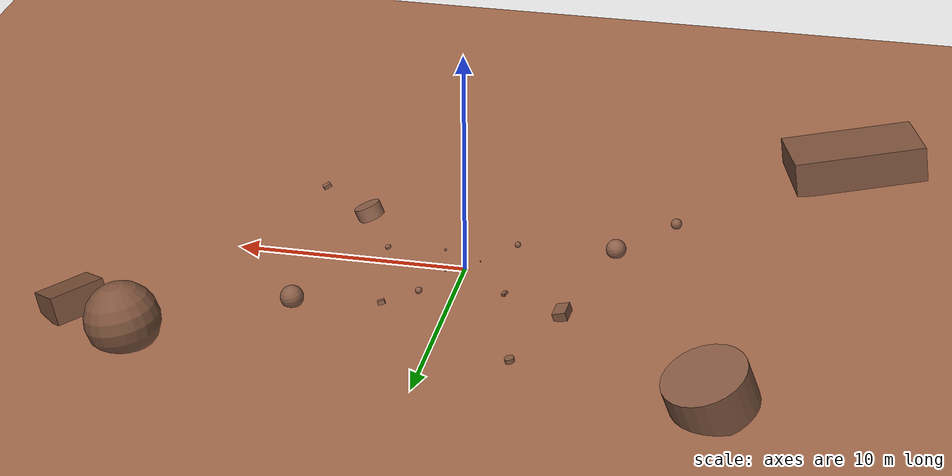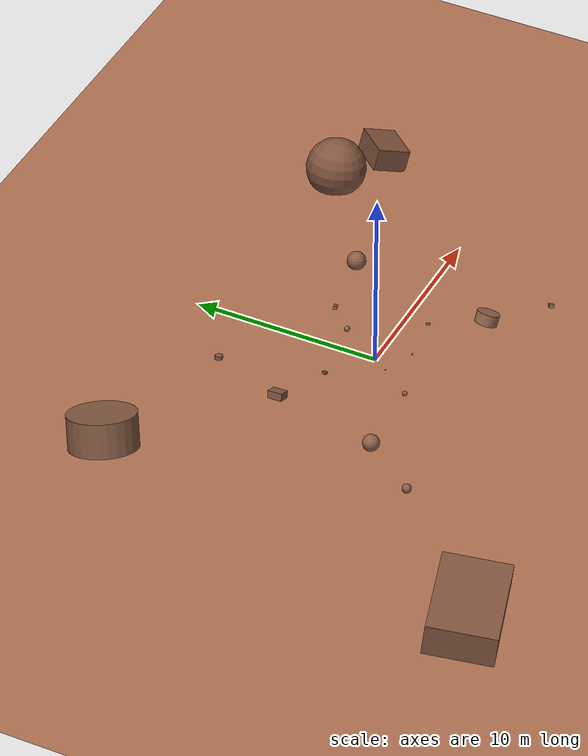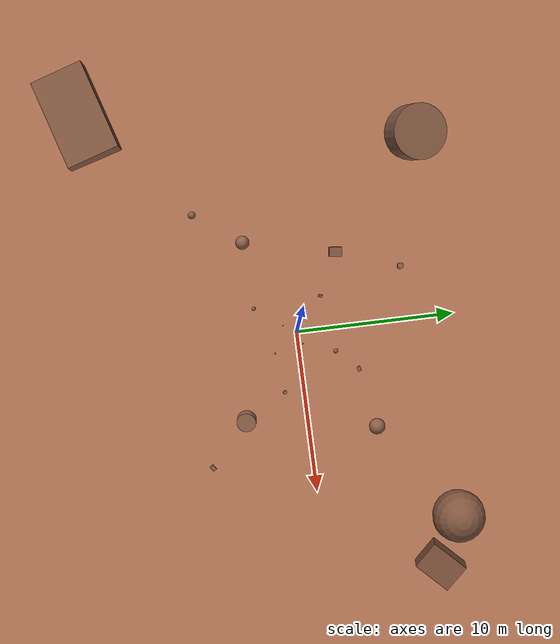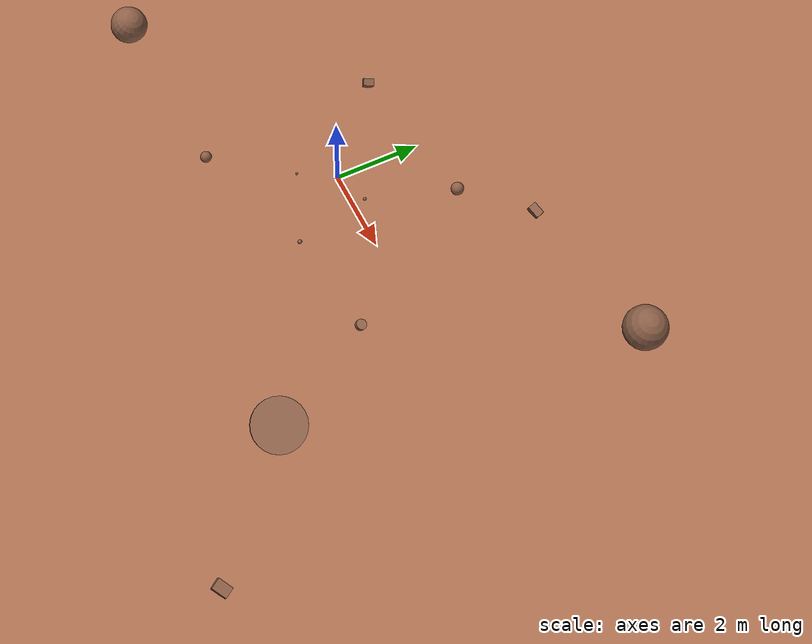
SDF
<?xml version="1.0" ?>
<sdf version="1.8">
  <world name="photorealistic_mars">

    <physics name="mars_physics" type="ignored">
      <max_step_size>0.001</max_step_size>
      <real_time_factor>1.0</real_time_factor>
    </physics>

    <plugin filename="libignition-gazebo-physics-system.so" name="ignition::gazebo::systems::Physics">
    </plugin>
    <plugin filename="libignition-gazebo-user-commands-system.so" name="ignition::gazebo::systems::UserCommands">
    </plugin>
    <plugin filename="libignition-gazebo-scene-broadcaster-system.so" name="ignition::gazebo::systems::SceneBroadcaster">
    </plugin>
    <plugin filename="libignition-gazebo-sensors-system.so" name="ignition::gazebo::systems::Sensors">
      <render_engine>ogre2</render_engine>
    </plugin>

    <!-- Mars gravity -->
    <gravity>0 0 -3.71</gravity>

    <!-- Mars atmosphere - realistic reddish sky -->
    <scene>
      <ambient>0.45 0.35 0.25 1.0</ambient>
      <background>0.85 0.55 0.35 1.0</background>
      <shadows>true</shadows>
      <fog>
        <color>0.9 0.6 0.4 1.0</color>
        <type>linear</type>
        <start>20</start>
        <end>300</end>
        <density>0.05</density>
      </fog>
    </scene>

    <!-- Mars sun - warmer, more diffused lighting -->
    <light type="directional" name="mars_sun">
      <cast_shadows>true</cast_shadows>
      <pose>100 50 80 0 0 0</pose>
      <diffuse>0.9 0.7 0.5 1</diffuse>
      <specular>0.4 0.3 0.2 1</specular>
      <attenuation>
        <range>2000</range>
        <constant>0.8</constant>
        <linear>0.005</linear>
        <quadratic>0.0001</quadratic>
      </attenuation>
      <direction>-0.4 -0.2 -0.8</direction>
    </light>

    <!-- Ambient fill light for Mars atmosphere -->
    <light type="directional" name="ambient_fill">
      <cast_shadows>false</cast_shadows>
      <pose>-50 -30 40 0 0 0</pose>
      <diffuse>0.3 0.2 0.15 1</diffuse>
      <specular>0.1 0.05 0.05 1</specular>
      <direction>0.3 0.2 -0.7</direction>
    </light>

    <!-- Mars terrain base with realistic coloring -->
    <model name="mars_terrain_base">
      <static>true</static>
      <link name="terrain_link">
        <collision name="terrain_collision">
          <geometry>
            <plane>
              <normal>0 0 1</normal>
              <size>500 500</size>
            </plane>
          </geometry>
          <surface>
            <friction>
              <ode>
                <mu>0.8</mu>
                <mu2>0.8</mu2>
              </ode>
            </friction>
          </surface>
        </collision>
        <visual name="terrain_visual">
          <geometry>
            <plane>
              <normal>0 0 1</normal>
              <size>500 500</size>
            </plane>
          </geometry>
          <material>
            <ambient>0.55 0.35 0.25 1</ambient>
            <diffuse>0.65 0.42 0.3 1</diffuse>
            <specular>0.05 0.05 0.05 1</specular>
          </material>
        </visual>
      </link>
    </model>

    <!-- Scattered rock field - small rocks everywhere -->
    <model name="scattered_small_rocks">
      <static>true</static>

      <!-- Row 1 of small rocks -->
      <link name="small_rock_1">
        <pose>1.5 2.3 0.08 0.2 0.1 0.5</pose>
        <collision name="small_rock_1_collision">
          <geometry>
            <sphere>
              <radius>0.15</radius>
            </sphere>
          </geometry>
        </collision>
        <visual name="small_rock_1_visual">
          <geometry>
            <sphere>
              <radius>0.15</radius>
            </sphere>
          </geometry>
          <material>
            <ambient>0.45 0.3 0.22 1</ambient>
            <diffuse>0.55 0.37 0.28 1</diffuse>
            <specular>0.1 0.1 0.1 1</specular>
          </material>
        </visual>
      </link>

      <link name="small_rock_2">
        <pose>-2.1 1.8 0.06 0.3 0.2 1.2</pose>
        <collision name="small_rock_2_collision">
          <geometry>
            <box>
              <size>0.25 0.18 0.12</size>
            </box>
          </geometry>
        </collision>
        <visual name="small_rock_2_visual">
          <geometry>
            <box>
              <size>0.25 0.18 0.12</size>
            </box>
          </geometry>
          <material>
            <ambient>0.42 0.28 0.2 1</ambient>
            <diffuse>0.52 0.35 0.26 1</diffuse>
            <specular>0.08 0.08 0.08 1</specular>
          </material>
        </visual>
      </link>

      <link name="small_rock_3">
        <pose>3.7 -1.2 0.05 0.1 0.4 0.8</pose>
        <collision name="small_rock_3_collision">
          <geometry>
            <cylinder>
              <radius>0.12</radius>
              <length>0.1</length>
            </cylinder>
          </geometry>
        </collision>
        <visual name="small_rock_3_visual">
          <geometry>
            <cylinder>
              <radius>0.12</radius>
              <length>0.1</length>
            </cylinder>
          </geometry>
          <material>
            <ambient>0.48 0.32 0.24 1</ambient>
            <diffuse>0.58 0.4 0.3 1</diffuse>
            <specular>0.1 0.1 0.1 1</specular>
          </material>
        </visual>
      </link>

      <link name="small_rock_4">
        <pose>-1.8 -2.5 0.07 0.5 0.1 1.8</pose>
        <collision name="small_rock_4_collision">
          <geometry>
            <sphere>
              <radius>0.13</radius>
            </sphere>
          </geometry>
        </collision>
        <visual name="small_rock_4_visual">
          <geometry>
            <sphere>
              <radius>0.13</radius>
            </sphere>
          </geometry>
          <material>
            <ambient>0.44 0.29 0.21 1</ambient>
            <diffuse>0.54 0.36 0.27 1</diffuse>
            <specular>0.09 0.09 0.09 1</specular>
          </material>
        </visual>
      </link>

      <link name="small_rock_5">
        <pose>2.8 3.6 0.09 0.2 0.3 0.3</pose>
        <collision name="small_rock_5_collision">
          <geometry>
            <box>
              <size>0.3 0.2 0.18</size>
            </box>
          </geometry>
        </collision>
        <visual name="small_rock_5_visual">
          <geometry>
            <box>
              <size>0.3 0.2 0.18</size>
            </box>
          </geometry>
          <material>
            <ambient>0.46 0.31 0.23 1</ambient>
            <diffuse>0.56 0.38 0.29 1</diffuse>
            <specular>0.1 0.1 0.1 1</specular>
          </material>
        </visual>
      </link>
    </model>

    <!-- Medium rocks scattered around -->
    <model name="medium_rocks_field">
      <static>true</static>

      <link name="medium_rock_1">
        <pose>6.5 4.2 0.25 0.1 0.2 0.7</pose>
        <collision name="medium_rock_1_collision">
          <geometry>
            <sphere>
              <radius>0.5</radius>
            </sphere>
          </geometry>
        </collision>
        <visual name="medium_rock_1_visual">
          <geometry>
            <sphere>
              <radius>0.5</radius>
            </sphere>
          </geometry>
          <material>
            <ambient>0.43 0.29 0.21 1</ambient>
            <diffuse>0.53 0.36 0.27 1</diffuse>
            <specular>0.12 0.12 0.12 1</specular>
          </material>
        </visual>
      </link>

      <link name="medium_rock_2">
        <pose>-4.8 3.1 0.2 0.3 0.1 1.5</pose>
        <collision name="medium_rock_2_collision">
          <geometry>
            <box>
              <size>0.8 0.6 0.4</size>
            </box>
          </geometry>
        </collision>
        <visual name="medium_rock_2_visual">
          <geometry>
            <box>
              <size>0.8 0.6 0.4</size>
            </box>
          </geometry>
          <material>
            <ambient>0.41 0.27 0.19 1</ambient>
            <diffuse>0.51 0.34 0.25 1</diffuse>
            <specular>0.11 0.11 0.11 1</specular>
          </material>
        </visual>
      </link>

      <link name="medium_rock_3">
        <pose>5.2 -3.8 0.3 0.4 0.2 0.9</pose>
        <collision name="medium_rock_3_collision">
          <geometry>
            <cylinder>
              <radius>0.6</radius>
              <length>0.6</length>
            </cylinder>
          </geometry>
        </collision>
        <visual name="medium_rock_3_visual">
          <geometry>
            <cylinder>
              <radius>0.6</radius>
              <length>0.6</length>
            </cylinder>
          </geometry>
          <material>
            <ambient>0.47 0.32 0.24 1</ambient>
            <diffuse>0.57 0.39 0.3 1</diffuse>
            <specular>0.13 0.13 0.13 1</specular>
          </material>
        </visual>
      </link>

      <link name="medium_rock_4">
        <pose>-6.1 -2.7 0.22 0.2 0.4 1.1</pose>
        <collision name="medium_rock_4_collision">
          <geometry>
            <sphere>
              <radius>0.44</radius>
            </sphere>
          </geometry>
        </collision>
        <visual name="medium_rock_4_visual">
          <geometry>
            <sphere>
              <radius>0.44</radius>
            </sphere>
          </geometry>
          <material>
            <ambient>0.45 0.3 0.22 1</ambient>
            <diffuse>0.55 0.37 0.28 1</diffuse>
            <specular>0.12 0.12 0.12 1</specular>
          </material>
        </visual>
      </link>
    </model>

    <!-- Large boulder formations -->
    <model name="large_boulder_formation">
      <static>true</static>

      <link name="large_boulder_1">
        <pose>12.5 8.3 0.8 0.1 0.2 0.4</pose>
        <collision name="large_boulder_1_collision">
          <geometry>
            <sphere>
              <radius>1.6</radius>
            </sphere>
          </geometry>
        </collision>
        <visual name="large_boulder_1_visual">
          <geometry>
            <sphere>
              <radius>1.6</radius>
            </sphere>
          </geometry>
          <material>
            <ambient>0.4 0.26 0.18 1</ambient>
            <diffuse>0.5 0.33 0.24 1</diffuse>
            <specular>0.15 0.15 0.15 1</specular>
          </material>
        </visual>
      </link>

      <link name="large_boulder_2">
        <pose>15.2 6.8 0.6 0.3 0.1 0.8</pose>
        <collision name="large_boulder_2_collision">
          <geometry>
            <box>
              <size>2.4 1.8 1.2</size>
            </box>
          </geometry>
        </collision>
        <visual name="large_boulder_2_visual">
          <geometry>
            <box>
              <size>2.4 1.8 1.2</size>
            </box>
          </geometry>
          <material>
            <ambient>0.38 0.25 0.17 1</ambient>
            <diffuse>0.48 0.31 0.22 1</diffuse>
            <specular>0.14 0.14 0.14 1</specular>
          </material>
        </visual>
      </link>

      <link name="large_boulder_3">
        <pose>-11.8 9.2 0.9 0.2 0.3 1.2</pose>
        <collision name="large_boulder_3_collision">
          <geometry>
            <cylinder>
              <radius>1.8</radius>
              <length>1.8</length>
            </cylinder>
          </geometry>
        </collision>
        <visual name="large_boulder_3_visual">
          <geometry>
            <cylinder>
              <radius>1.8</radius>
              <length>1.8</length>
            </cylinder>
          </geometry>
          <material>
            <ambient>0.42 0.28 0.2 1</ambient>
            <diffuse>0.52 0.35 0.26 1</diffuse>
            <specular>0.16 0.16 0.16 1</specular>
          </material>
        </visual>
      </link>
    </model>

    <!-- More scattered rocks for realistic density -->
    <model name="distant_rocks_1">
      <static>true</static>

      <link name="dist_rock_1">
        <pose>-8.3 -5.7 0.12 0.3 0.2 2.1</pose>
        <collision name="dist_rock_1_collision">
          <geometry>
            <sphere>
              <radius>0.24</radius>
            </sphere>
          </geometry>
        </collision>
        <visual name="dist_rock_1_visual">
          <geometry>
            <sphere>
              <radius>0.24</radius>
            </sphere>
          </geometry>
          <material>
            <ambient>0.44 0.29 0.21 1</ambient>
            <diffuse>0.54 0.36 0.27 1</diffuse>
            <specular>0.1 0.1 0.1 1</specular>
          </material>
        </visual>
      </link>

      <link name="dist_rock_2">
        <pose>7.8 -6.2 0.08 0.1 0.4 0.6</pose>
        <collision name="dist_rock_2_collision">
          <geometry>
            <box>
              <size>0.35 0.25 0.16</size>
            </box>
          </geometry>
        </collision>
        <visual name="dist_rock_2_visual">
          <geometry>
            <box>
              <size>0.35 0.25 0.16</size>
            </box>
          </geometry>
          <material>
            <ambient>0.46 0.31 0.23 1</ambient>
            <diffuse>0.56 0.38 0.29 1</diffuse>
            <specular>0.11 0.11 0.11 1</specular>
          </material>
        </visual>
      </link>

      <link name="dist_rock_3">
        <pose>-3.4 7.1 0.1 0.2 0.1 1.4</pose>
        <collision name="dist_rock_3_collision">
          <geometry>
            <cylinder>
              <radius>0.2</radius>
              <length>0.2</length>
            </cylinder>
          </geometry>
        </collision>
        <visual name="dist_rock_3_visual">
          <geometry>
            <cylinder>
              <radius>0.2</radius>
              <length>0.2</length>
            </cylinder>
          </geometry>
          <material>
            <ambient>0.43 0.28 0.2 1</ambient>
            <diffuse>0.53 0.35 0.26 1</diffuse>
            <specular>0.1 0.1 0.1 1</specular>
          </material>
        </visual>
      </link>
    </model>

    <!-- Additional rocky outcrops -->
    <model name="rocky_outcrop">
      <pose>-15.5 -12.3 0.8 0.1 0.1 0.3</pose>
      <static>true</static>
      <link name="outcrop_link">
        <collision name="outcrop_collision">
          <geometry>
            <box>
              <size>6.0 3.5 1.6</size>
            </box>
          </geometry>
        </collision>
        <visual name="outcrop_visual">
          <geometry>
            <box>
              <size>6.0 3.5 1.6</size>
            </box>
          </geometry>
          <material>
            <ambient>0.41 0.27 0.19 1</ambient>
            <diffuse>0.51 0.34 0.25 1</diffuse>
            <specular>0.13 0.13 0.13 1</specular>
          </material>
        </visual>
      </link>
    </model>

    <!-- Very small pebbles for ground detail -->
    <model name="pebble_details">
      <static>true</static>

      <link name="pebble_1">
        <pose>0.8 0.3 0.02 0 0 0</pose>
        <collision name="pebble_1_collision">
          <geometry>
            <sphere>
              <radius>0.04</radius>
            </sphere>
          </geometry>
        </collision>
        <visual name="pebble_1_visual">
          <geometry>
            <sphere>
              <radius>0.04</radius>
            </sphere>
          </geometry>
          <material>
            <ambient>0.48 0.32 0.24 1</ambient>
            <diffuse>0.58 0.4 0.3 1</diffuse>
          </material>
        </visual>
      </link>

      <link name="pebble_2">
        <pose>-0.5 -0.8 0.015 0 0 0</pose>
        <collision name="pebble_2_collision">
          <geometry>
            <sphere>
              <radius>0.03</radius>
            </sphere>
          </geometry>
        </collision>
        <visual name="pebble_2_visual">
          <geometry>
            <sphere>
              <radius>0.03</radius>
            </sphere>
          </geometry>
          <material>
            <ambient>0.45 0.3 0.22 1</ambient>
            <diffuse>0.55 0.37 0.28 1</diffuse>
          </material>
        </visual>
      </link>

      <link name="pebble_3">
        <pose>1.2 -1.5 0.025 0 0 0</pose>
        <collision name="pebble_3_collision">
          <geometry>
            <sphere>
              <radius>0.05</radius>
            </sphere>
          </geometry>
        </collision>
        <visual name="pebble_3_visual">
          <geometry>
            <sphere>
              <radius>0.05</radius>
            </sphere>
          </geometry>
          <material>
            <ambient>0.47 0.31 0.23 1</ambient>
            <diffuse>0.57 0.38 0.29 1</diffuse>
          </material>
        </visual>
      </link>
    </model>

  </world>
</sdf>
